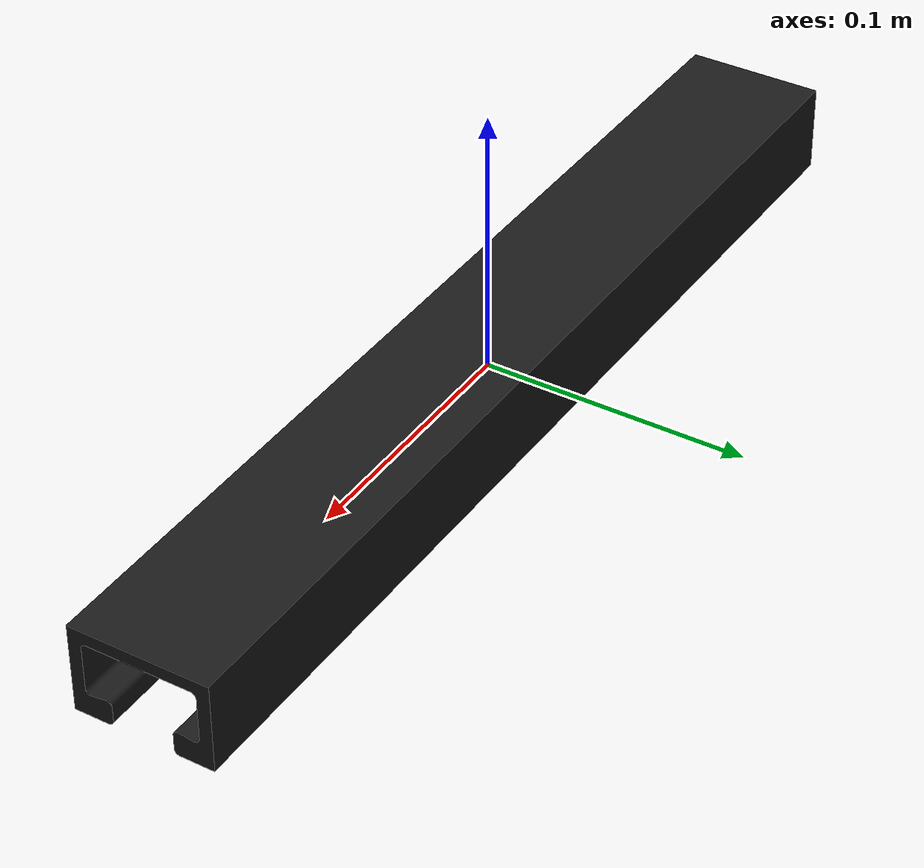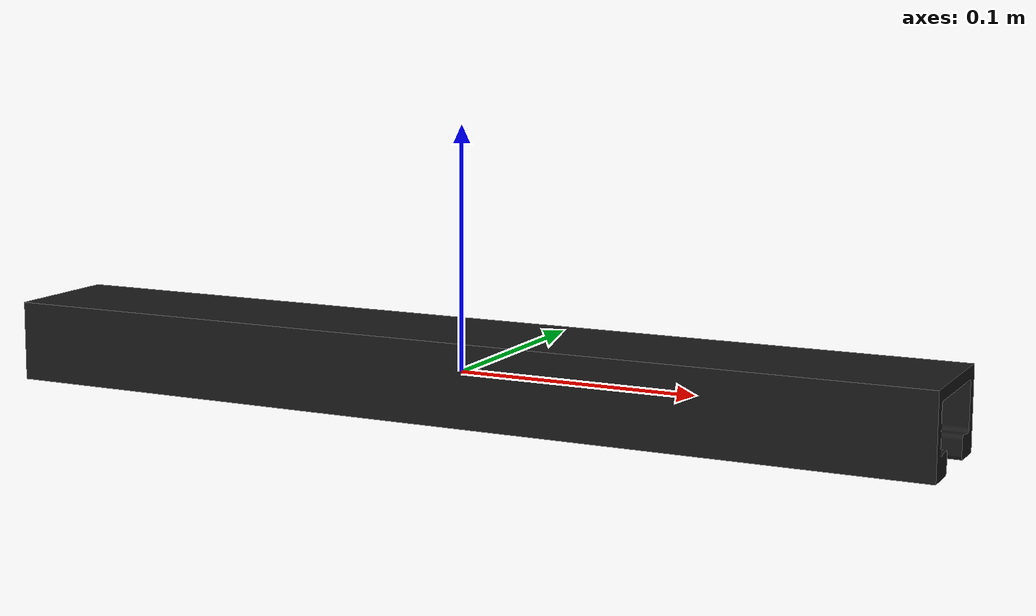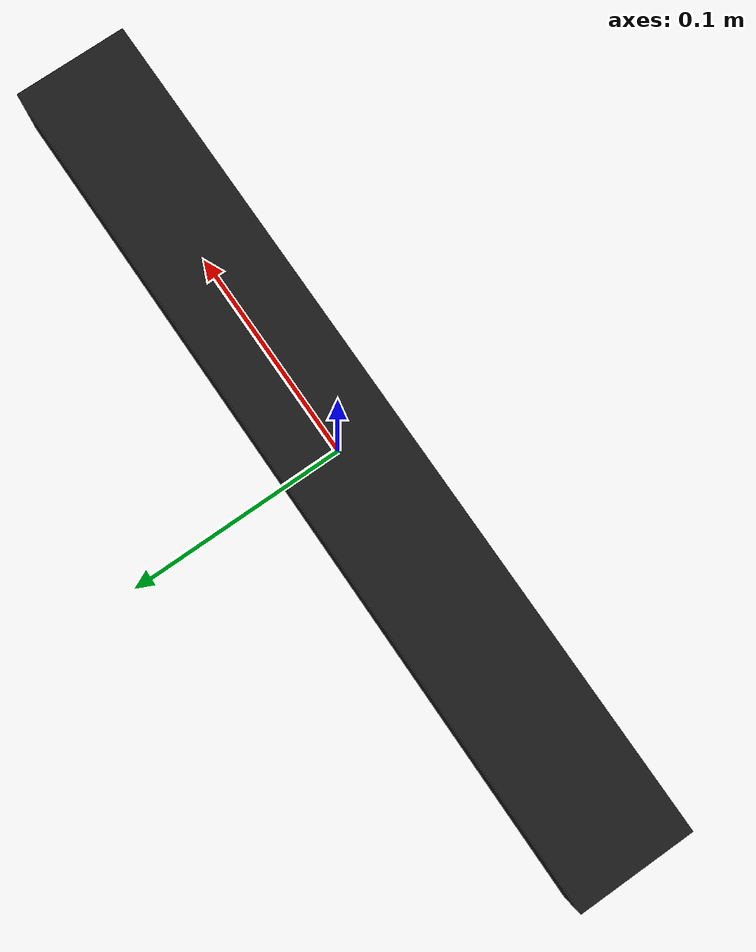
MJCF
<mujoco model="channel">
  <asset>
        <mesh name="channel" file="meshes/channel.stl" />
  </asset>
  <worldbody>
      <body>
      <body name="object">
            <geom type="mesh" contype="0" conaffinity="0" group="1" pos="0 0 0." quat="0 0 0 1" rgba="0.1 0.1 0.1 1" name="channel_visual" mesh="channel" />
            <geom type="mesh" group="0" rgba="0.1 0.1 0.1 1" pos="0 0 0." quat="0 0 0 1" mesh="channel" name="channel_collision" />
      </body>
      </body>
  </worldbody>
</mujoco>
